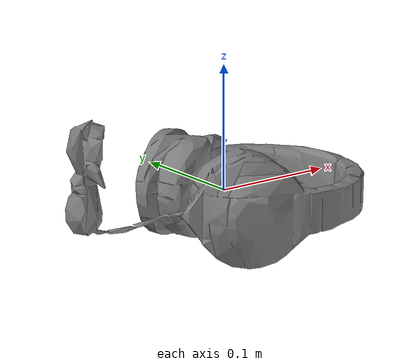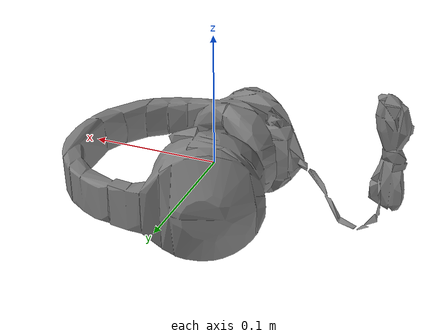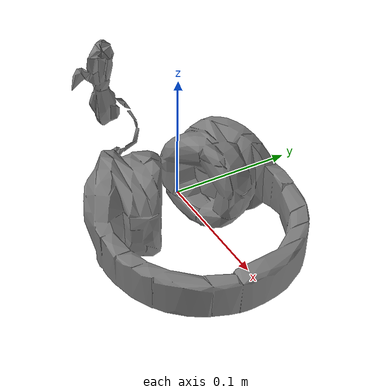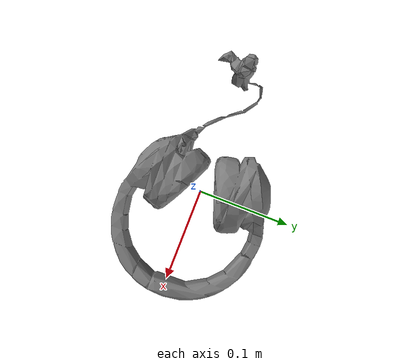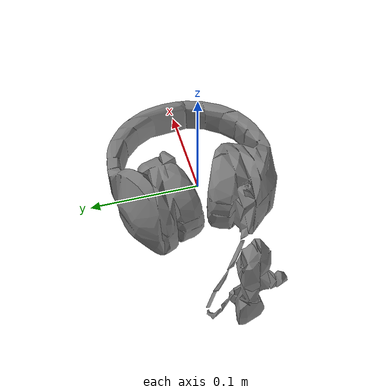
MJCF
<mujoco model="headphone_Razer_Kraken_Pro_headset_Full_size_Black_M">
  <default>
    <default class="visual">
      <geom group="2" type="mesh" contype="0" conaffinity="0" />
    </default>
    <default class="collision">
      <geom group="3" type="mesh" />
    </default>
  </default>
  <asset>
    <mesh file="headphone_Razer_Kraken_Pro_headset_Full_size_Black_M.stl" />
    <mesh file="headphone_Razer_Kraken_Pro_headset_Full_size_Black_M_collision_0.stl" />
    <mesh file="headphone_Razer_Kraken_Pro_headset_Full_size_Black_M_collision_1.stl" />
    <mesh file="headphone_Razer_Kraken_Pro_headset_Full_size_Black_M_collision_2.stl" />
    <mesh file="headphone_Razer_Kraken_Pro_headset_Full_size_Black_M_collision_3.stl" />
    <mesh file="headphone_Razer_Kraken_Pro_headset_Full_size_Black_M_collision_4.stl" />
    <mesh file="headphone_Razer_Kraken_Pro_headset_Full_size_Black_M_collision_5.stl" />
    <mesh file="headphone_Razer_Kraken_Pro_headset_Full_size_Black_M_collision_6.stl" />
    <mesh file="headphone_Razer_Kraken_Pro_headset_Full_size_Black_M_collision_7.stl" />
    <mesh file="headphone_Razer_Kraken_Pro_headset_Full_size_Black_M_collision_8.stl" />
    <mesh file="headphone_Razer_Kraken_Pro_headset_Full_size_Black_M_collision_9.stl" />
    <mesh file="headphone_Razer_Kraken_Pro_headset_Full_size_Black_M_collision_10.stl" />
    <mesh file="headphone_Razer_Kraken_Pro_headset_Full_size_Black_M_collision_11.stl" />
    <mesh file="headphone_Razer_Kraken_Pro_headset_Full_size_Black_M_collision_12.stl" />
    <mesh file="headphone_Razer_Kraken_Pro_headset_Full_size_Black_M_collision_13.stl" />
    <mesh file="headphone_Razer_Kraken_Pro_headset_Full_size_Black_M_collision_14.stl" />
    <mesh file="headphone_Razer_Kraken_Pro_headset_Full_size_Black_M_collision_15.stl" />
  </asset>
  <worldbody>
    <body name="headphone_Razer_Kraken_Pro_headset_Full_size_Black_M">
      <geom mesh="headphone_Razer_Kraken_Pro_headset_Full_size_Black_M" class="visual" />
      <geom mesh="headphone_Razer_Kraken_Pro_headset_Full_size_Black_M_collision_0" class="collision" />
      <geom mesh="headphone_Razer_Kraken_Pro_headset_Full_size_Black_M_collision_1" class="collision" />
      <geom mesh="headphone_Razer_Kraken_Pro_headset_Full_size_Black_M_collision_2" class="collision" />
      <geom mesh="headphone_Razer_Kraken_Pro_headset_Full_size_Black_M_collision_3" class="collision" />
      <geom mesh="headphone_Razer_Kraken_Pro_headset_Full_size_Black_M_collision_4" class="collision" />
      <geom mesh="headphone_Razer_Kraken_Pro_headset_Full_size_Black_M_collision_5" class="collision" />
      <geom mesh="headphone_Razer_Kraken_Pro_headset_Full_size_Black_M_collision_6" class="collision" />
      <geom mesh="headphone_Razer_Kraken_Pro_headset_Full_size_Black_M_collision_7" class="collision" />
      <geom mesh="headphone_Razer_Kraken_Pro_headset_Full_size_Black_M_collision_8" class="collision" />
      <geom mesh="headphone_Razer_Kraken_Pro_headset_Full_size_Black_M_collision_9" class="collision" />
      <geom mesh="headphone_Razer_Kraken_Pro_headset_Full_size_Black_M_collision_10" class="collision" />
      <geom mesh="headphone_Razer_Kraken_Pro_headset_Full_size_Black_M_collision_11" class="collision" />
      <geom mesh="headphone_Razer_Kraken_Pro_headset_Full_size_Black_M_collision_12" class="collision" />
      <geom mesh="headphone_Razer_Kraken_Pro_headset_Full_size_Black_M_collision_13" class="collision" />
      <geom mesh="headphone_Razer_Kraken_Pro_headset_Full_size_Black_M_collision_14" class="collision" />
      <geom mesh="headphone_Razer_Kraken_Pro_headset_Full_size_Black_M_collision_15" class="collision" />
    </body>
  </worldbody>
</mujoco>
